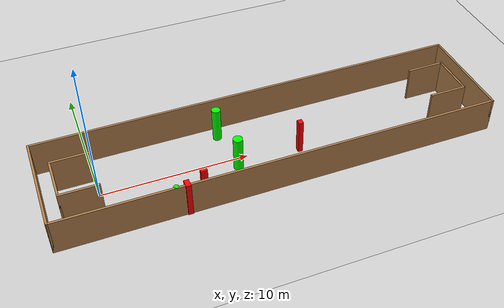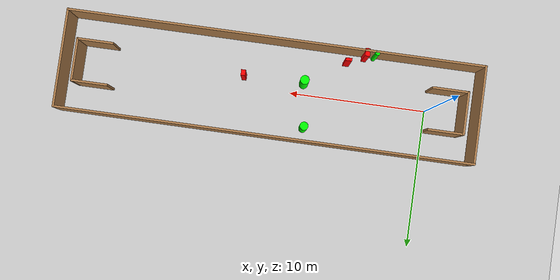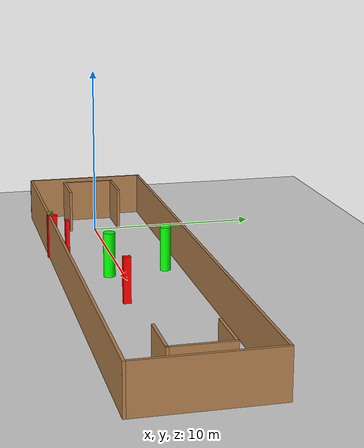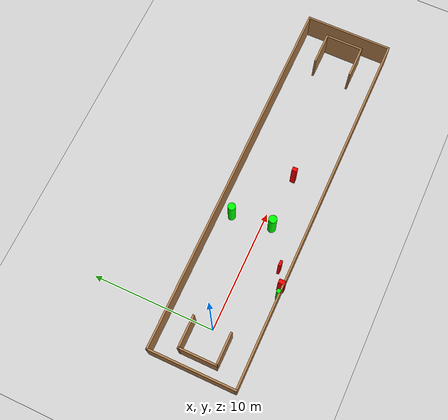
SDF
<sdf version="1.7">
 <world name="default">
  <light name="sun" type="directional">
   <pose>0 0 10 0 -0 0</pose>
   <diffuse>0.8 0.8 0.8 1</diffuse>
   <specular>0.2 0.2 0.2 1</specular>
   <attenuation>
    <range>1000</range>
    <constant>0.9</constant>
    <linear>0.01</linear>
    <quadratic>0.001</quadratic>
   </attenuation>
   <direction>-0.5 0.1 -0.9</direction>
   <spot><inner_angle>0</inner_angle><outer_angle>0</outer_angle><falloff>0</falloff></spot>
  </light>
  <model name="ground_plane">
   <static>1</static>
   <link name="link">
    <collision name="collision">
     <geometry><plane><normal>0 0 1</normal><size>100 100</size></plane></geometry>
     <surface>
      <contact><collide_bitmask>65535</collide_bitmask></contact>
      <friction><ode><mu>100</mu><mu2>50</mu2></ode></friction>
     </surface>
    </collision>
    <visual name="visual">
     <cast_shadows>0</cast_shadows>
     <geometry><plane><normal>0 0 1</normal><size>100 100</size></plane></geometry>
     <material>
      <script><uri>file://media/materials/scripts/gazebo.material</uri><name>Gazebo/Grey</name></script>
     </material>
    </visual>
   </link>
  </model>
  <gravity>0 0 -9.8</gravity>
  <magnetic_field>6e-06 2.3e-05 -4.2e-05</magnetic_field>
  <atmosphere type="adiabatic"/>
  <physics type="ode">
   <max_step_size>0.001</max_step_size>
   <real_time_factor>1</real_time_factor>
   <real_time_update_rate>1000</real_time_update_rate>
  </physics>
  <scene><ambient>0.4 0.4 0.4 1</ambient><background>0.7 0.7 0.7 1</background><shadows>1</shadows></scene>
  <spherical_coordinates>
   <surface_model>EARTH_WGS84</surface_model>
   <latitude_deg>0</latitude_deg>
   <longitude_deg>0</longitude_deg>
   <elevation>0</elevation>
   <heading_deg>0</heading_deg>
  </spherical_coordinates>
  <model name="my_base_walls">
   <link name="Wall_0">
    <collision name="Wall_0_Collision">
     <geometry><box><size>7.15 0.15 2.5</size></box></geometry>
     <pose>0 0 1.25 0 -0 0</pose>
    </collision>
    <visual name="Wall_0_Visual">
     <pose>0 0 1.25 0 -0 0</pose>
     <geometry><box><size>7.15 0.15 2.5</size></box></geometry>
     <material>
      <script><uri>file://media/materials/scripts/gazebo.material</uri><name>Gazebo/Wood</name></script>
      <ambient>1 1 1 1</ambient>
     </material>
     <meta><layer>0</layer></meta>
    </visual>
    <pose>-15 0 0 0 -0 1.5708</pose>
   </link>
   <link name="Wall_10">
    <collision name="Wall_10_Collision">
     <geometry><box><size>2.65 0.15 2.5</size></box></geometry>
     <pose>0 0 1.25 0 -0 0</pose>
    </collision>
    <visual name="Wall_10_Visual">
     <pose>0 0 1.25 0 -0 0</pose>
     <geometry><box><size>2.65 0.15 2.5</size></box></geometry>
     <material>
      <script><uri>file://media/materials/scripts/gazebo.material</uri><name>Gazebo/Wood</name></script>
      <ambient>1 1 1 1</ambient>
     </material>
     <meta><layer>0</layer></meta>
    </visual>
    <pose>-12.75 -1.5 0 0 -0 0</pose>
   </link>
   <link name="Wall_12">
    <collision name="Wall_12_Collision">
     <geometry><box><size>2.65 0.15 2.5</size></box></geometry>
     <pose>0 0 1.25 0 -0 0</pose>
    </collision>
    <visual name="Wall_12_Visual">
     <pose>0 0 1.25 0 -0 0</pose>
     <geometry><box><size>2.65 0.15 2.5</size></box></geometry>
     <material>
      <script><uri>file://media/materials/scripts/gazebo.material</uri><name>Gazebo/Wood</name></script>
      <ambient>1 1 1 1</ambient>
     </material>
     <meta><layer>0</layer></meta>
    </visual>
    <pose>-12.75 1.5 0 0 -0 0</pose>
   </link>
   <link name="Wall_14">
    <collision name="Wall_14_Collision">
     <geometry><box><size>3.15 0.15 2.5</size></box></geometry>
     <pose>0 0 1.25 0 -0 0</pose>
    </collision>
    <visual name="Wall_14_Visual">
     <pose>0 0 1.25 0 -0 0</pose>
     <geometry><box><size>3.15 0.15 2.5</size></box></geometry>
     <material>
      <script><uri>file://media/materials/scripts/gazebo.material</uri><name>Gazebo/Wood</name></script>
      <ambient>1 1 1 1</ambient>
     </material>
     <meta><layer>0</layer></meta>
    </visual>
    <pose>14 0 0 0 -0 -1.5708</pose>
   </link>
   <link name="Wall_15">
    <collision name="Wall_15_Collision">
     <geometry><box><size>2.65 0.15 2.5</size></box></geometry>
     <pose>0 0 1.25 0 -0 0</pose>
    </collision>
    <visual name="Wall_15_Visual">
     <pose>0 0 1.25 0 -0 0</pose>
     <geometry><box><size>2.65 0.15 2.5</size></box></geometry>
     <material>
      <script><uri>file://media/materials/scripts/gazebo.material</uri><name>Gazebo/Wood</name></script>
      <ambient>1 1 1 1</ambient>
     </material>
     <meta><layer>0</layer></meta>
    </visual>
    <pose>12.75 -1.5 0 0 -0 3.14159</pose>
   </link>
   <link name="Wall_17">
    <collision name="Wall_17_Collision">
     <geometry><box><size>2.65 0.15 2.5</size></box></geometry>
     <pose>0 0 1.25 0 -0 0</pose>
    </collision>
    <visual name="Wall_17_Visual">
     <pose>0 0 1.25 0 -0 0</pose>
     <geometry><box><size>2.65 0.15 2.5</size></box></geometry>
     <material>
      <script><uri>file://media/materials/scripts/gazebo.material</uri><name>Gazebo/Wood</name></script>
      <ambient>1 1 1 1</ambient>
     </material>
     <meta><layer>0</layer></meta>
    </visual>
    <pose>12.75 1.5 0 0 -0 3.14159</pose>
   </link>
   <link name="Wall_2">
    <collision name="Wall_2_Collision">
     <geometry><box><size>30.15 0.15 2.5</size></box></geometry>
     <pose>0 0 1.25 0 -0 0</pose>
    </collision>
    <visual name="Wall_2_Visual">
     <pose>0 0 1.25 0 -0 0</pose>
     <geometry><box><size>30.15 0.15 2.5</size></box></geometry>
     <material>
      <script><uri>file://media/materials/scripts/gazebo.material</uri><name>Gazebo/Wood</name></script>
      <ambient>1 1 1 1</ambient>
     </material>
     <meta><layer>0</layer></meta>
    </visual>
    <pose>-0 -3.5 0 0 -0 0</pose>
   </link>
   <link name="Wall_4">
    <collision name="Wall_4_Collision">
     <geometry><box><size>30.15 0.15 2.5</size></box></geometry>
     <pose>0 0 1.25 0 -0 0</pose>
    </collision>
    <visual name="Wall_4_Visual">
     <pose>0 0 1.25 0 -0 0</pose>
     <geometry><box><size>30.15 0.15 2.5</size></box></geometry>
     <material>
      <script><uri>file://media/materials/scripts/gazebo.material</uri><name>Gazebo/Wood</name></script>
      <ambient>1 1 1 1</ambient>
     </material>
     <meta><layer>0</layer></meta>
    </visual>
    <pose>-0 3.5 0 0 -0 0</pose>
   </link>
   <link name="Wall_6">
    <collision name="Wall_6_Collision">
     <geometry><box><size>7.15 0.15 2.5</size></box></geometry>
     <pose>0 0 1.25 0 -0 0</pose>
    </collision>
    <visual name="Wall_6_Visual">
     <pose>0 0 1.25 0 -0 0</pose>
     <geometry><box><size>7.15 0.15 2.5</size></box></geometry>
     <material>
      <script><uri>file://media/materials/scripts/gazebo.material</uri><name>Gazebo/Wood</name></script>
      <ambient>1 1 1 1</ambient>
     </material>
     <meta><layer>0</layer></meta>
    </visual>
    <pose>15 0 0 0 -0 -1.5708</pose>
   </link>
   <link name="Wall_9">
    <collision name="Wall_9_Collision">
     <geometry><box><size>3.15 0.15 2.5</size></box></geometry>
     <pose>0 0 1.25 0 -0 0</pose>
    </collision>
    <visual name="Wall_9_Visual">
     <pose>0 0 1.25 0 -0 0</pose>
     <geometry><box><size>3.15 0.15 2.5</size></box></geometry>
     <material>
      <script><uri>file://media/materials/scripts/gazebo.material</uri><name>Gazebo/Wood</name></script>
      <ambient>1 1 1 1</ambient>
     </material>
     <meta><layer>0</layer></meta>
    </visual>
    <pose>-14 0 0 0 -0 -1.5708</pose>
   </link>
   <static>1</static>
   <pose>11.5 0 0 0 -0 0</pose>
  </model>
  <model name="cylinder1">
   <static>1</static>
   <link name="link">
    <inertial>
     <mass>1</mass>
     <inertia><ixx>0.5</ixx><ixy>0</ixy><ixz>0</ixz><iyy>0.5</iyy><iyz>0</iyz><izz>1</izz></inertia>
    </inertial>
    <collision name="collision">
     <geometry><cylinder><radius>0.30078834883467975</radius><length>2.5</length></cylinder></geometry>
    </collision>
    <visual name="visual">
     <geometry><cylinder><radius>0.30078834883467975</radius><length>2.5</length></cylinder></geometry>
     <material>
      <ambient>0 1 0 1</ambient>
      <diffuse>0 1 0 1</diffuse>
      <specular>0.1 0.1 0.1 1</specular>
      <emissive>0 0 0 0</emissive>
     </material>
    </visual>
   </link>
   <pose>8.73097309928115 2.4681456306493894 1.25 0 0 0</pose>
  </model>
  <model name="cylinder2">
   <static>1</static>
   <link name="link">
    <inertial>
     <mass>1</mass>
     <inertia><ixx>0.5</ixx><ixy>0</ixy><ixz>0</ixz><iyy>0.5</iyy><iyz>0</iyz><izz>1</izz></inertia>
    </inertial>
    <collision name="collision">
     <geometry><cylinder><radius>0.32584348651316036</radius><length>2.5</length></cylinder></geometry>
    </collision>
    <visual name="visual">
     <geometry><cylinder><radius>0.32584348651316036</radius><length>2.5</length></cylinder></geometry>
     <material>
      <ambient>0 1 0 1</ambient>
      <diffuse>0 1 0 1</diffuse>
      <specular>0.1 0.1 0.1 1</specular>
      <emissive>0 0 0 0</emissive>
     </material>
    </visual>
   </link>
   <pose>9.111749023127294 -0.7861131971081674 1.25 0 0 0</pose>
  </model>
  <model name="cylinder3">
   <static>1</static>
   <link name="link">
    <inertial>
     <mass>1</mass>
     <inertia><ixx>0.5</ixx><ixy>0</ixy><ixz>0</ixz><iyy>0.5</iyy><iyz>0</iyz><izz>1</izz></inertia>
    </inertial>
    <collision name="collision">
     <geometry><cylinder><radius>0.1712328528411031</radius><length>2.5</length></cylinder></geometry>
    </collision>
    <visual name="visual">
     <geometry><cylinder><radius>0.1712328528411031</radius><length>2.5</length></cylinder></geometry>
     <material>
      <ambient>0 1 0 1</ambient>
      <diffuse>0 1 0 1</diffuse>
      <specular>0.1 0.1 0.1 1</specular>
      <emissive>0 0 0 0</emissive>
     </material>
    </visual>
   </link>
   <pose>4.236814499288032 -3.3989870261476782 1.25 0 0 0</pose>
  </model>
  <model name="box1">
   <static>1</static>
   <link name="link">
    <inertial>
     <mass>1</mass>
     <inertia><ixx>0.083</ixx><ixy>0</ixy><ixz>0</ixz><iyy>0.083</iyy><iyz>0</iyz><izz>0.083</izz></inertia>
    </inertial>
    <collision name="collision">
     <geometry><box><size>0.44775015102942084 0.20975099500278646 2.5</size></box></geometry>
    </collision>
    <visual name="visual">
     <geometry><box><size>0.44775015102942084 0.20975099500278646 2.5</size></box></geometry>
     <material>
      <ambient>1 0 0 1</ambient>
      <diffuse>1 0 0 1</diffuse>
      <specular>0.1 0.1 0.1 1</specular>
      <emissive>0 0 0 0</emissive>
     </material>
    </visual>
    <sensor name="my_contact" type="contact">
     <contact><collision>box_collision</collision><topic>__default_topic__</topic></contact>
    </sensor>
   </link>
   <pose>6.208536887653363 -2.668635732602404 1.25 0 0 0</pose>
  </model>
  <model name="box2">
   <static>1</static>
   <link name="link">
    <inertial>
     <mass>1</mass>
     <inertia><ixx>0.083</ixx><ixy>0</ixy><ixz>0</ixz><iyy>0.083</iyy><iyz>0</iyz><izz>0.083</izz></inertia>
    </inertial>
    <collision name="collision">
     <geometry><box><size>0.31820411750687466 0.40288712629245926 2.5</size></box></geometry>
    </collision>
    <visual name="visual">
     <geometry><box><size>0.31820411750687466 0.40288712629245926 2.5</size></box></geometry>
     <material>
      <ambient>1 0 0 1</ambient>
      <diffuse>1 0 0 1</diffuse>
      <specular>0.1 0.1 0.1 1</specular>
      <emissive>0 0 0 0</emissive>
     </material>
    </visual>
    <sensor name="my_contact" type="contact">
     <contact><collision>box_collision</collision><topic>__default_topic__</topic></contact>
    </sensor>
   </link>
   <pose>13.50889586451909 -0.7072856579925428 1.25 0 0 0</pose>
  </model>
  <model name="box3">
   <static>1</static>
   <link name="link">
    <inertial>
     <mass>1</mass>
     <inertia><ixx>0.083</ixx><ixy>0</ixy><ixz>0</ixz><iyy>0.083</iyy><iyz>0</iyz><izz>0.083</izz></inertia>
    </inertial>
    <collision name="collision">
     <geometry><box><size>0.3406284113559809 0.5591184271962248 2.5</size></box></geometry>
    </collision>
    <visual name="visual">
     <geometry><box><size>0.3406284113559809 0.5591184271962248 2.5</size></box></geometry>
     <material>
      <ambient>1 0 0 1</ambient>
      <diffuse>1 0 0 1</diffuse>
      <specular>0.1 0.1 0.1 1</specular>
      <emissive>0 0 0 0</emissive>
     </material>
    </visual>
    <sensor name="my_contact" type="contact">
     <contact><collision>box_collision</collision><topic>__default_topic__</topic></contact>
    </sensor>
   </link>
   <pose>4.949350018537123 -3.359215983708484 1.25 0 0 0</pose>
  </model>
 </world>
</sdf>
